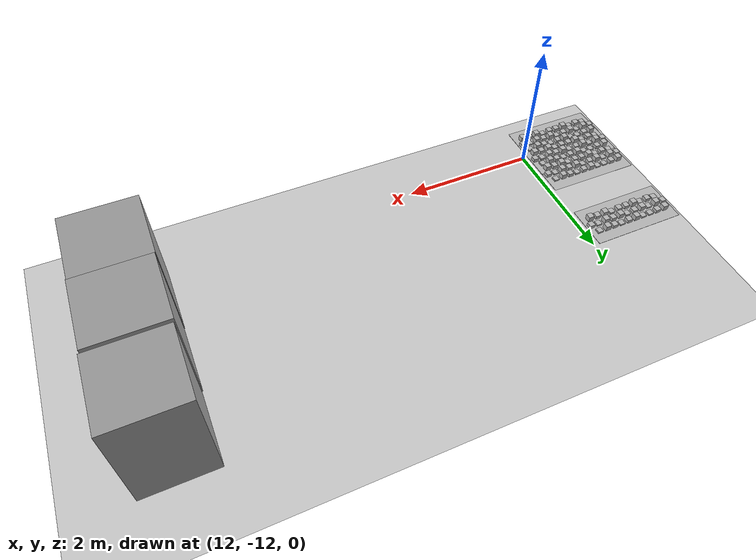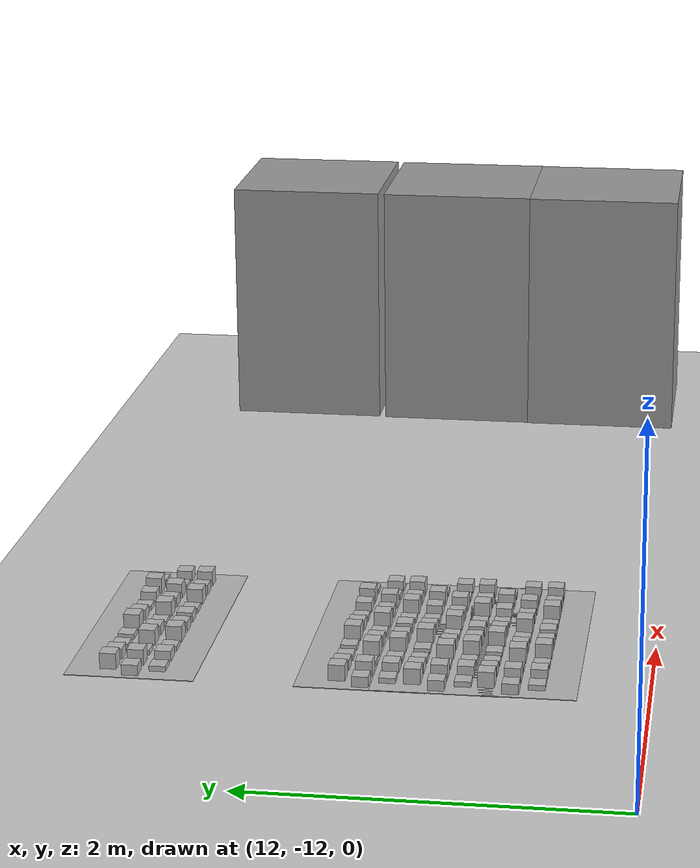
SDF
<sdf version="1.6">
 <world name="default">
  <model name="ground_plane">
   <static>1</static>
   <link name="link">
    <collision name="collision">
     <geometry><plane><normal>0 0 1</normal><size>100 100</size></plane></geometry>
     <surface><friction><ode><mu>100</mu><mu2>50</mu2></ode></friction></surface>
    </collision>
    <visual name="visual">
     <cast_shadows>0</cast_shadows>
     <geometry><plane><normal>0 0 1</normal><size>100 100</size></plane></geometry>
     <material>
      <script><uri>file://media/materials/scripts/gazebo.material</uri><name>Gazebo/Grey</name></script>
     </material>
    </visual>
   </link>
  </model>
  <model name="frc2016_roughterrain_clone_0_clone_clone_3_clone_1">
   <static>1</static>
   <link name="link">
    <visual name="platform">
     <pose>0 0 0.08269 0 -0 0</pose>
     <geometry><box><size>1.27 0.5969 0.003175</size></box></geometry>
    </visual>
    <collision name="platform">
     <pose>0 0 0.08269 0 -0 0</pose>
     <geometry><box><size>1.27 0.5969 0.003175</size></box></geometry>
    </collision>
    <visual name="row1_block1_sm">
     <pose>0.51435 0.1143 0.09698 0 -0 0</pose>
     <geometry><box><size>0.0762 0.0762 0.0254</size></box></geometry>
    </visual>
    <collision name="row1_block1_sm">
     <pose>0.51435 0.1143 0.09698 0 -0 0</pose>
     <geometry><box><size>0.0762 0.0762 0.0254</size></box></geometry>
    </collision>
    <visual name="row1_block2_lg">
     <pose>0.40005 0.1143 0.12238 0 -0 0</pose>
     <geometry><box><size>0.0762 0.0762 0.0762</size></box></geometry>
    </visual>
    <collision name="row1_block2_lg">
     <pose>0.40005 0.1143 0.12238 0 -0 0</pose>
     <geometry><box><size>0.0762 0.0762 0.0762</size></box></geometry>
    </collision>
    <visual name="row1_block3_md">
     <pose>0.28575 0.1143 0.10968 0 -0 0</pose>
     <geometry><box><size>0.0762 0.0762 0.0508</size></box></geometry>
    </visual>
    <collision name="row1_block3_md">
     <pose>0.28575 0.1143 0.10968 0 -0 0</pose>
     <geometry><box><size>0.0762 0.0762 0.0508</size></box></geometry>
    </collision>
    <visual name="row1_block4_sm">
     <pose>0.17145 0.1143 0.09698 0 -0 0</pose>
     <geometry><box><size>0.0762 0.0762 0.0254</size></box></geometry>
    </visual>
    <collision name="row1_block4_sm">
     <pose>0.17145 0.1143 0.09698 0 -0 0</pose>
     <geometry><box><size>0.0762 0.0762 0.0254</size></box></geometry>
    </collision>
    <visual name="row1_block5_md">
     <pose>0.05715 0.1143 0.10968 0 -0 0</pose>
     <geometry><box><size>0.0762 0.0762 0.0508</size></box></geometry>
    </visual>
    <collision name="row1_block5_md">
     <pose>0.05715 0.1143 0.10968 0 -0 0</pose>
     <geometry><box><size>0.0762 0.0762 0.0508</size></box></geometry>
    </collision>
    <visual name="row1_block6_lg">
     <pose>-0.05715 0.1143 0.12238 0 -0 0</pose>
     <geometry><box><size>0.0762 0.0762 0.0762</size></box></geometry>
    </visual>
    <collision name="row1_block6_lg">
     <pose>-0.05715 0.1143 0.12238 0 -0 0</pose>
     <geometry><box><size>0.0762 0.0762 0.0762</size></box></geometry>
    </collision>
    <visual name="row1_block7_sm">
     <pose>-0.17145 0.1143 0.09698 0 -0 0</pose>
     <geometry><box><size>0.0762 0.0762 0.0254</size></box></geometry>
    </visual>
    <collision name="row1_block7_sm">
     <pose>-0.17145 0.1143 0.09698 0 -0 0</pose>
     <geometry><box><size>0.0762 0.0762 0.0254</size></box></geometry>
    </collision>
    <visual name="row1_block8_sm">
     <pose>-0.28575 0.1143 0.09698 0 -0 0</pose>
     <geometry><box><size>0.0762 0.0762 0.0254</size></box></geometry>
    </visual>
    <collision name="row1_block8_sm">
     <pose>-0.28575 0.1143 0.09698 0 -0 0</pose>
     <geometry><box><size>0.0762 0.0762 0.0254</size></box></geometry>
    </collision>
    <visual name="row1_block9_md">
     <pose>-0.40005 0.1143 0.10968 0 -0 0</pose>
     <geometry><box><size>0.0762 0.0762 0.0508</size></box></geometry>
    </visual>
    <collision name="row1_block9_md">
     <pose>-0.40005 0.1143 0.10968 0 -0 0</pose>
     <geometry><box><size>0.0762 0.0762 0.0508</size></box></geometry>
    </collision>
    <visual name="row1_block10_lg">
     <pose>-0.51435 0.1143 0.12238 0 -0 0</pose>
     <geometry><box><size>0.0762 0.0762 0.0762</size></box></geometry>
    </visual>
    <collision name="row1_block10_lg">
     <pose>-0.51435 0.1143 0.12238 0 -0 0</pose>
     <geometry><box><size>0.0762 0.0762 0.0762</size></box></geometry>
    </collision>
    <visual name="row2_block1_md">
     <pose>0.5715 0 0.10968 0 -0 0</pose>
     <geometry><box><size>0.0762 0.0762 0.0508</size></box></geometry>
    </visual>
    <collision name="row2_block1_md">
     <pose>0.5715 0 0.10968 0 -0 0</pose>
     <geometry><box><size>0.0762 0.0762 0.0508</size></box></geometry>
    </collision>
    <visual name="row2_block2_sm">
     <pose>0.4572 0 0.09698 0 -0 0</pose>
     <geometry><box><size>0.0762 0.0762 0.0254</size></box></geometry>
    </visual>
    <collision name="row2_block2_sm">
     <pose>0.4572 0 0.09698 0 -0 0</pose>
     <geometry><box><size>0.0762 0.0762 0.0254</size></box></geometry>
    </collision>
    <visual name="row2_block3_lg">
     <pose>0.3429 0 0.12238 0 -0 0</pose>
     <geometry><box><size>0.0762 0.0762 0.0762</size></box></geometry>
    </visual>
    <collision name="row2_block3_lg">
     <pose>0.3429 0 0.12238 0 -0 0</pose>
     <geometry><box><size>0.0762 0.0762 0.0762</size></box></geometry>
    </collision>
    <visual name="row2_block4_md">
     <pose>0.2286 0 0.10968 0 -0 0</pose>
     <geometry><box><size>0.0762 0.0762 0.0508</size></box></geometry>
    </visual>
    <collision name="row2_block4_md">
     <pose>0.2286 0 0.10968 0 -0 0</pose>
     <geometry><box><size>0.0762 0.0762 0.0508</size></box></geometry>
    </collision>
    <visual name="row2_block5_lg">
     <pose>0.1143 0 0.12238 0 -0 0</pose>
     <geometry><box><size>0.0762 0.0762 0.0762</size></box></geometry>
    </visual>
    <collision name="row2_block5_lg">
     <pose>0.1143 0 0.12238 0 -0 0</pose>
     <geometry><box><size>0.0762 0.0762 0.0762</size></box></geometry>
    </collision>
    <visual name="row2_block6_sm">
     <pose>0 0 0.09698 0 -0 0</pose>
     <geometry><box><size>0.0762 0.0762 0.0254</size></box></geometry>
    </visual>
    <collision name="row2_block6_sm">
     <pose>0 0 0.09698 0 -0 0</pose>
     <geometry><box><size>0.0762 0.0762 0.0254</size></box></geometry>
    </collision>
    <visual name="row2_block7_md">
     <pose>-0.1143 0 0.10968 0 -0 0</pose>
     <geometry><box><size>0.0762 0.0762 0.0508</size></box></geometry>
    </visual>
    <collision name="row2_block7_md">
     <pose>-0.1143 0 0.10968 0 -0 0</pose>
     <geometry><box><size>0.0762 0.0762 0.0508</size></box></geometry>
    </collision>
    <visual name="row2_block8_lg">
     <pose>-0.2286 0 0.12238 0 -0 0</pose>
     <geometry><box><size>0.0762 0.0762 0.0762</size></box></geometry>
    </visual>
    <collision name="row2_block8_lg">
     <pose>-0.2286 0 0.12238 0 -0 0</pose>
     <geometry><box><size>0.0762 0.0762 0.0762</size></box></geometry>
    </collision>
    <visual name="row2_block9_sm">
     <pose>-0.3429 0 0.09698 0 -0 0</pose>
     <geometry><box><size>0.0762 0.0762 0.0254</size></box></geometry>
    </visual>
    <collision name="row2_block9_sm">
     <pose>-0.3429 0 0.09698 0 -0 0</pose>
     <geometry><box><size>0.0762 0.0762 0.0254</size></box></geometry>
    </collision>
    <visual name="row2_block10_lg">
     <pose>-0.4572 0 0.12238 0 -0 0</pose>
     <geometry><box><size>0.0762 0.0762 0.0762</size></box></geometry>
    </visual>
    <collision name="row2_block10_lg">
     <pose>-0.4572 0 0.12238 0 -0 0</pose>
     <geometry><box><size>0.0762 0.0762 0.0762</size></box></geometry>
    </collision>
    <visual name="row2_block11_md">
     <pose>-0.5715 0 0.10968 0 -0 0</pose>
     <geometry><box><size>0.0762 0.0762 0.0508</size></box></geometry>
    </visual>
    <collision name="row2_block11_md">
     <pose>-0.5715 0 0.10968 0 -0 0</pose>
     <geometry><box><size>0.0762 0.0762 0.0508</size></box></geometry>
    </collision>
    <visual name="row3_block1_lg">
     <pose>0.51435 -0.1143 0.12238 0 -0 0</pose>
     <geometry><box><size>0.0762 0.0762 0.0762</size></box></geometry>
    </visual>
    <collision name="row3_block1_lg">
     <pose>0.51435 -0.1143 0.12238 0 -0 0</pose>
     <geometry><box><size>0.0762 0.0762 0.0762</size></box></geometry>
    </collision>
    <visual name="row3_block2_md">
     <pose>0.40005 -0.1143 0.10968 0 -0 0</pose>
     <geometry><box><size>0.0762 0.0762 0.0508</size></box></geometry>
    </visual>
    <collision name="row3_block2_md">
     <pose>0.40005 -0.1143 0.10968 0 -0 0</pose>
     <geometry><box><size>0.0762 0.0762 0.0508</size></box></geometry>
    </collision>
    <visual name="row3_block3_lg">
     <pose>0.28575 -0.1143 0.12238 0 -0 0</pose>
     <geometry><box><size>0.0762 0.0762 0.0762</size></box></geometry>
    </visual>
    <collision name="row3_block3_lg">
     <pose>0.28575 -0.1143 0.12238 0 -0 0</pose>
     <geometry><box><size>0.0762 0.0762 0.0762</size></box></geometry>
    </collision>
    <visual name="row3_block4_sm">
     <pose>0.17145 -0.1143 0.09698 0 -0 0</pose>
     <geometry><box><size>0.0762 0.0762 0.0254</size></box></geometry>
    </visual>
    <collision name="row3_block4_sm">
     <pose>0.17145 -0.1143 0.09698 0 -0 0</pose>
     <geometry><box><size>0.0762 0.0762 0.0254</size></box></geometry>
    </collision>
    <visual name="row3_block5_md">
     <pose>0.05715 -0.1143 0.10968 0 -0 0</pose>
     <geometry><box><size>0.0762 0.0762 0.0508</size></box></geometry>
    </visual>
    <collision name="row3_block5_md">
     <pose>0.05715 -0.1143 0.10968 0 -0 0</pose>
     <geometry><box><size>0.0762 0.0762 0.0508</size></box></geometry>
    </collision>
    <visual name="row3_block6_md">
     <pose>-0.05715 -0.1143 0.10968 0 -0 0</pose>
     <geometry><box><size>0.0762 0.0762 0.0508</size></box></geometry>
    </visual>
    <collision name="row3_block6_md">
     <pose>-0.05715 -0.1143 0.10968 0 -0 0</pose>
     <geometry><box><size>0.0762 0.0762 0.0508</size></box></geometry>
    </collision>
    <visual name="row3_block7_lg">
     <pose>-0.17145 -0.1143 0.12238 0 -0 0</pose>
     <geometry><box><size>0.0762 0.0762 0.0762</size></box></geometry>
    </visual>
    <collision name="row3_block7_lg">
     <pose>-0.17145 -0.1143 0.12238 0 -0 0</pose>
     <geometry><box><size>0.0762 0.0762 0.0762</size></box></geometry>
    </collision>
    <visual name="row3_block8_sm">
     <pose>-0.28575 -0.1143 0.09698 0 -0 0</pose>
     <geometry><box><size>0.0762 0.0762 0.0254</size></box></geometry>
    </visual>
    <collision name="row3_block8_sm">
     <pose>-0.28575 -0.1143 0.09698 0 -0 0</pose>
     <geometry><box><size>0.0762 0.0762 0.0254</size></box></geometry>
    </collision>
    <visual name="row3_block9_md">
     <pose>-0.40005 -0.1143 0.10968 0 -0 0</pose>
     <geometry><box><size>0.0762 0.0762 0.0508</size></box></geometry>
    </visual>
    <collision name="row3_block9_md">
     <pose>-0.40005 -0.1143 0.10968 0 -0 0</pose>
     <geometry><box><size>0.0762 0.0762 0.0508</size></box></geometry>
    </collision>
    <visual name="row3_block10_sm">
     <pose>-0.51435 -0.1143 0.09698 0 -0 0</pose>
     <geometry><box><size>0.0762 0.0762 0.0254</size></box></geometry>
    </visual>
    <collision name="row3_block10_sm">
     <pose>-0.51435 -0.1143 0.09698 0 -0 0</pose>
     <geometry><box><size>0.0762 0.0762 0.0254</size></box></geometry>
    </collision>
   </link>
   <pose>11.9159 -9.72039 0.826533 0 -0 0</pose>
  </model>
  <model name="frc2016_roughterrain_clone_0_clone_clone_3_clone_1_clone_0_clone">
   <static>1</static>
   <link name="link">
    <visual name="platform">
     <pose>0 0 0.08269 0 -0 0</pose>
     <geometry><box><size>1.27 0.5969 0.003175</size></box></geometry>
    </visual>
    <collision name="platform">
     <pose>0 0 0.08269 0 -0 0</pose>
     <geometry><box><size>1.27 0.5969 0.003175</size></box></geometry>
    </collision>
    <visual name="row1_block1_sm">
     <pose>0.51435 0.1143 0.09698 0 -0 0</pose>
     <geometry><box><size>0.0762 0.0762 0.0254</size></box></geometry>
    </visual>
    <collision name="row1_block1_sm">
     <pose>0.51435 0.1143 0.09698 0 -0 0</pose>
     <geometry><box><size>0.0762 0.0762 0.0254</size></box></geometry>
    </collision>
    <visual name="row1_block2_lg">
     <pose>0.40005 0.1143 0.12238 0 -0 0</pose>
     <geometry><box><size>0.0762 0.0762 0.0762</size></box></geometry>
    </visual>
    <collision name="row1_block2_lg">
     <pose>0.40005 0.1143 0.12238 0 -0 0</pose>
     <geometry><box><size>0.0762 0.0762 0.0762</size></box></geometry>
    </collision>
    <visual name="row1_block3_md">
     <pose>0.28575 0.1143 0.10968 0 -0 0</pose>
     <geometry><box><size>0.0762 0.0762 0.0508</size></box></geometry>
    </visual>
    <collision name="row1_block3_md">
     <pose>0.28575 0.1143 0.10968 0 -0 0</pose>
     <geometry><box><size>0.0762 0.0762 0.0508</size></box></geometry>
    </collision>
    <visual name="row1_block4_sm">
     <pose>0.17145 0.1143 0.09698 0 -0 0</pose>
     <geometry><box><size>0.0762 0.0762 0.0254</size></box></geometry>
    </visual>
    <collision name="row1_block4_sm">
     <pose>0.17145 0.1143 0.09698 0 -0 0</pose>
     <geometry><box><size>0.0762 0.0762 0.0254</size></box></geometry>
    </collision>
    <visual name="row1_block5_md">
     <pose>0.05715 0.1143 0.10968 0 -0 0</pose>
     <geometry><box><size>0.0762 0.0762 0.0508</size></box></geometry>
    </visual>
    <collision name="row1_block5_md">
     <pose>0.05715 0.1143 0.10968 0 -0 0</pose>
     <geometry><box><size>0.0762 0.0762 0.0508</size></box></geometry>
    </collision>
    <visual name="row1_block6_lg">
     <pose>-0.05715 0.1143 0.12238 0 -0 0</pose>
     <geometry><box><size>0.0762 0.0762 0.0762</size></box></geometry>
    </visual>
    <collision name="row1_block6_lg">
     <pose>-0.05715 0.1143 0.12238 0 -0 0</pose>
     <geometry><box><size>0.0762 0.0762 0.0762</size></box></geometry>
    </collision>
    <visual name="row1_block7_sm">
     <pose>-0.17145 0.1143 0.09698 0 -0 0</pose>
     <geometry><box><size>0.0762 0.0762 0.0254</size></box></geometry>
    </visual>
    <collision name="row1_block7_sm">
     <pose>-0.17145 0.1143 0.09698 0 -0 0</pose>
     <geometry><box><size>0.0762 0.0762 0.0254</size></box></geometry>
    </collision>
    <visual name="row1_block8_sm">
     <pose>-0.28575 0.1143 0.09698 0 -0 0</pose>
     <geometry><box><size>0.0762 0.0762 0.0254</size></box></geometry>
    </visual>
    <collision name="row1_block8_sm">
     <pose>-0.28575 0.1143 0.09698 0 -0 0</pose>
     <geometry><box><size>0.0762 0.0762 0.0254</size></box></geometry>
    </collision>
    <visual name="row1_block9_md">
     <pose>-0.40005 0.1143 0.10968 0 -0 0</pose>
     <geometry><box><size>0.0762 0.0762 0.0508</size></box></geometry>
    </visual>
    <collision name="row1_block9_md">
     <pose>-0.40005 0.1143 0.10968 0 -0 0</pose>
     <geometry><box><size>0.0762 0.0762 0.0508</size></box></geometry>
    </collision>
    <visual name="row1_block10_lg">
     <pose>-0.51435 0.1143 0.12238 0 -0 0</pose>
     <geometry><box><size>0.0762 0.0762 0.0762</size></box></geometry>
    </visual>
    <collision name="row1_block10_lg">
     <pose>-0.51435 0.1143 0.12238 0 -0 0</pose>
     <geometry><box><size>0.0762 0.0762 0.0762</size></box></geometry>
    </collision>
    <visual name="row2_block1_md">
     <pose>0.5715 0 0.10968 0 -0 0</pose>
     <geometry><box><size>0.0762 0.0762 0.0508</size></box></geometry>
    </visual>
    <collision name="row2_block1_md">
     <pose>0.5715 0 0.10968 0 -0 0</pose>
     <geometry><box><size>0.0762 0.0762 0.0508</size></box></geometry>
    </collision>
    <visual name="row2_block2_sm">
     <pose>0.4572 0 0.09698 0 -0 0</pose>
     <geometry><box><size>0.0762 0.0762 0.0254</size></box></geometry>
    </visual>
    <collision name="row2_block2_sm">
     <pose>0.4572 0 0.09698 0 -0 0</pose>
     <geometry><box><size>0.0762 0.0762 0.0254</size></box></geometry>
    </collision>
    <visual name="row2_block3_lg">
     <pose>0.3429 0 0.12238 0 -0 0</pose>
     <geometry><box><size>0.0762 0.0762 0.0762</size></box></geometry>
    </visual>
    <collision name="row2_block3_lg">
     <pose>0.3429 0 0.12238 0 -0 0</pose>
     <geometry><box><size>0.0762 0.0762 0.0762</size></box></geometry>
    </collision>
    <visual name="row2_block4_md">
     <pose>0.2286 0 0.10968 0 -0 0</pose>
     <geometry><box><size>0.0762 0.0762 0.0508</size></box></geometry>
    </visual>
    <collision name="row2_block4_md">
     <pose>0.2286 0 0.10968 0 -0 0</pose>
     <geometry><box><size>0.0762 0.0762 0.0508</size></box></geometry>
    </collision>
    <visual name="row2_block5_lg">
     <pose>0.1143 0 0.12238 0 -0 0</pose>
     <geometry><box><size>0.0762 0.0762 0.0762</size></box></geometry>
    </visual>
    <collision name="row2_block5_lg">
     <pose>0.1143 0 0.12238 0 -0 0</pose>
     <geometry><box><size>0.0762 0.0762 0.0762</size></box></geometry>
    </collision>
    <visual name="row2_block6_sm">
     <pose>0 0 0.09698 0 -0 0</pose>
     <geometry><box><size>0.0762 0.0762 0.0254</size></box></geometry>
    </visual>
    <collision name="row2_block6_sm">
     <pose>0 0 0.09698 0 -0 0</pose>
     <geometry><box><size>0.0762 0.0762 0.0254</size></box></geometry>
    </collision>
    <visual name="row2_block7_md">
     <pose>-0.1143 0 0.10968 0 -0 0</pose>
     <geometry><box><size>0.0762 0.0762 0.0508</size></box></geometry>
    </visual>
    <collision name="row2_block7_md">
     <pose>-0.1143 0 0.10968 0 -0 0</pose>
     <geometry><box><size>0.0762 0.0762 0.0508</size></box></geometry>
    </collision>
    <visual name="row2_block8_lg">
     <pose>-0.2286 0 0.12238 0 -0 0</pose>
     <geometry><box><size>0.0762 0.0762 0.0762</size></box></geometry>
    </visual>
    <collision name="row2_block8_lg">
     <pose>-0.2286 0 0.12238 0 -0 0</pose>
     <geometry><box><size>0.0762 0.0762 0.0762</size></box></geometry>
    </collision>
    <visual name="row2_block9_sm">
     <pose>-0.3429 0 0.09698 0 -0 0</pose>
     <geometry><box><size>0.0762 0.0762 0.0254</size></box></geometry>
    </visual>
    <collision name="row2_block9_sm">
     <pose>-0.3429 0 0.09698 0 -0 0</pose>
     <geometry><box><size>0.0762 0.0762 0.0254</size></box></geometry>
    </collision>
    <visual name="row2_block10_lg">
     <pose>-0.4572 0 0.12238 0 -0 0</pose>
     <geometry><box><size>0.0762 0.0762 0.0762</size></box></geometry>
    </visual>
    <collision name="row2_block10_lg">
     <pose>-0.4572 0 0.12238 0 -0 0</pose>
     <geometry><box><size>0.0762 0.0762 0.0762</size></box></geometry>
    </collision>
    <visual name="row2_block11_md">
     <pose>-0.5715 0 0.10968 0 -0 0</pose>
     <geometry><box><size>0.0762 0.0762 0.0508</size></box></geometry>
    </visual>
    <collision name="row2_block11_md">
     <pose>-0.5715 0 0.10968 0 -0 0</pose>
     <geometry><box><size>0.0762 0.0762 0.0508</size></box></geometry>
    </collision>
    <visual name="row3_block1_lg">
     <pose>0.51435 -0.1143 0.12238 0 -0 0</pose>
     <geometry><box><size>0.0762 0.0762 0.0762</size></box></geometry>
    </visual>
    <collision name="row3_block1_lg">
     <pose>0.51435 -0.1143 0.12238 0 -0 0</pose>
     <geometry><box><size>0.0762 0.0762 0.0762</size></box></geometry>
    </collision>
    <visual name="row3_block2_md">
     <pose>0.40005 -0.1143 0.10968 0 -0 0</pose>
     <geometry><box><size>0.0762 0.0762 0.0508</size></box></geometry>
    </visual>
    <collision name="row3_block2_md">
     <pose>0.40005 -0.1143 0.10968 0 -0 0</pose>
     <geometry><box><size>0.0762 0.0762 0.0508</size></box></geometry>
    </collision>
    <visual name="row3_block3_lg">
     <pose>0.28575 -0.1143 0.12238 0 -0 0</pose>
     <geometry><box><size>0.0762 0.0762 0.0762</size></box></geometry>
    </visual>
    <collision name="row3_block3_lg">
     <pose>0.28575 -0.1143 0.12238 0 -0 0</pose>
     <geometry><box><size>0.0762 0.0762 0.0762</size></box></geometry>
    </collision>
    <visual name="row3_block4_sm">
     <pose>0.17145 -0.1143 0.09698 0 -0 0</pose>
     <geometry><box><size>0.0762 0.0762 0.0254</size></box></geometry>
    </visual>
    <collision name="row3_block4_sm">
     <pose>0.17145 -0.1143 0.09698 0 -0 0</pose>
     <geometry><box><size>0.0762 0.0762 0.0254</size></box></geometry>
    </collision>
    <visual name="row3_block5_md">
     <pose>0.05715 -0.1143 0.10968 0 -0 0</pose>
     <geometry><box><size>0.0762 0.0762 0.0508</size></box></geometry>
    </visual>
    <collision name="row3_block5_md">
     <pose>0.05715 -0.1143 0.10968 0 -0 0</pose>
     <geometry><box><size>0.0762 0.0762 0.0508</size></box></geometry>
    </collision>
    <visual name="row3_block6_md">
     <pose>-0.05715 -0.1143 0.10968 0 -0 0</pose>
     <geometry><box><size>0.0762 0.0762 0.0508</size></box></geometry>
    </visual>
    <collision name="row3_block6_md">
     <pose>-0.05715 -0.1143 0.10968 0 -0 0</pose>
     <geometry><box><size>0.0762 0.0762 0.0508</size></box></geometry>
    </collision>
    <visual name="row3_block7_lg">
     <pose>-0.17145 -0.1143 0.12238 0 -0 0</pose>
     <geometry><box><size>0.0762 0.0762 0.0762</size></box></geometry>
    </visual>
    <collision name="row3_block7_lg">
     <pose>-0.17145 -0.1143 0.12238 0 -0 0</pose>
     <geometry><box><size>0.0762 0.0762 0.0762</size></box></geometry>
    </collision>
    <visual name="row3_block8_sm">
     <pose>-0.28575 -0.1143 0.09698 0 -0 0</pose>
     <geometry><box><size>0.0762 0.0762 0.0254</size></box></geometry>
    </visual>
    <collision name="row3_block8_sm">
     <pose>-0.28575 -0.1143 0.09698 0 -0 0</pose>
     <geometry><box><size>0.0762 0.0762 0.0254</size></box></geometry>
    </collision>
    <visual name="row3_block9_md">
     <pose>-0.40005 -0.1143 0.10968 0 -0 0</pose>
     <geometry><box><size>0.0762 0.0762 0.0508</size></box></geometry>
    </visual>
    <collision name="row3_block9_md">
     <pose>-0.40005 -0.1143 0.10968 0 -0 0</pose>
     <geometry><box><size>0.0762 0.0762 0.0508</size></box></geometry>
    </collision>
    <visual name="row3_block10_sm">
     <pose>-0.51435 -0.1143 0.09698 0 -0 0</pose>
     <geometry><box><size>0.0762 0.0762 0.0254</size></box></geometry>
    </visual>
    <collision name="row3_block10_sm">
     <pose>-0.51435 -0.1143 0.09698 0 -0 0</pose>
     <geometry><box><size>0.0762 0.0762 0.0254</size></box></geometry>
    </collision>
   </link>
   <pose>11.9156 -10.7733 0.826533 0 -0 0</pose>
  </model>
  <model name="frc2016_roughterrain_clone_0_clone_clone_3_clone_1_clone_0_clone_clone">
   <static>1</static>
   <link name="link">
    <visual name="platform">
     <pose>0 0 0.08269 0 -0 0</pose>
     <geometry><box><size>1.27 0.5969 0.003175</size></box></geometry>
    </visual>
    <collision name="platform">
     <pose>0 0 0.08269 0 -0 0</pose>
     <geometry><box><size>1.27 0.5969 0.003175</size></box></geometry>
    </collision>
    <visual name="row1_block1_sm">
     <pose>0.51435 0.1143 0.09698 0 -0 0</pose>
     <geometry><box><size>0.0762 0.0762 0.0254</size></box></geometry>
    </visual>
    <collision name="row1_block1_sm">
     <pose>0.51435 0.1143 0.09698 0 -0 0</pose>
     <geometry><box><size>0.0762 0.0762 0.0254</size></box></geometry>
    </collision>
    <visual name="row1_block2_lg">
     <pose>0.40005 0.1143 0.12238 0 -0 0</pose>
     <geometry><box><size>0.0762 0.0762 0.0762</size></box></geometry>
    </visual>
    <collision name="row1_block2_lg">
     <pose>0.40005 0.1143 0.12238 0 -0 0</pose>
     <geometry><box><size>0.0762 0.0762 0.0762</size></box></geometry>
    </collision>
    <visual name="row1_block3_md">
     <pose>0.28575 0.1143 0.10968 0 -0 0</pose>
     <geometry><box><size>0.0762 0.0762 0.0508</size></box></geometry>
    </visual>
    <collision name="row1_block3_md">
     <pose>0.28575 0.1143 0.10968 0 -0 0</pose>
     <geometry><box><size>0.0762 0.0762 0.0508</size></box></geometry>
    </collision>
    <visual name="row1_block4_sm">
     <pose>0.17145 0.1143 0.09698 0 -0 0</pose>
     <geometry><box><size>0.0762 0.0762 0.0254</size></box></geometry>
    </visual>
    <collision name="row1_block4_sm">
     <pose>0.17145 0.1143 0.09698 0 -0 0</pose>
     <geometry><box><size>0.0762 0.0762 0.0254</size></box></geometry>
    </collision>
    <visual name="row1_block5_md">
     <pose>0.05715 0.1143 0.10968 0 -0 0</pose>
     <geometry><box><size>0.0762 0.0762 0.0508</size></box></geometry>
    </visual>
    <collision name="row1_block5_md">
     <pose>0.05715 0.1143 0.10968 0 -0 0</pose>
     <geometry><box><size>0.0762 0.0762 0.0508</size></box></geometry>
    </collision>
    <visual name="row1_block6_lg">
     <pose>-0.05715 0.1143 0.12238 0 -0 0</pose>
     <geometry><box><size>0.0762 0.0762 0.0762</size></box></geometry>
    </visual>
    <collision name="row1_block6_lg">
     <pose>-0.05715 0.1143 0.12238 0 -0 0</pose>
     <geometry><box><size>0.0762 0.0762 0.0762</size></box></geometry>
    </collision>
    <visual name="row1_block7_sm">
     <pose>-0.17145 0.1143 0.09698 0 -0 0</pose>
     <geometry><box><size>0.0762 0.0762 0.0254</size></box></geometry>
    </visual>
    <collision name="row1_block7_sm">
     <pose>-0.17145 0.1143 0.09698 0 -0 0</pose>
     <geometry><box><size>0.0762 0.0762 0.0254</size></box></geometry>
    </collision>
    <visual name="row1_block8_sm">
     <pose>-0.28575 0.1143 0.09698 0 -0 0</pose>
     <geometry><box><size>0.0762 0.0762 0.0254</size></box></geometry>
    </visual>
    <collision name="row1_block8_sm">
     <pose>-0.28575 0.1143 0.09698 0 -0 0</pose>
     <geometry><box><size>0.0762 0.0762 0.0254</size></box></geometry>
    </collision>
    <visual name="row1_block9_md">
     <pose>-0.40005 0.1143 0.10968 0 -0 0</pose>
     <geometry><box><size>0.0762 0.0762 0.0508</size></box></geometry>
    </visual>
    <collision name="row1_block9_md">
     <pose>-0.40005 0.1143 0.10968 0 -0 0</pose>
     <geometry><box><size>0.0762 0.0762 0.0508</size></box></geometry>
    </collision>
    <visual name="row1_block10_lg">
     <pose>-0.51435 0.1143 0.12238 0 -0 0</pose>
     <geometry><box><size>0.0762 0.0762 0.0762</size></box></geometry>
    </visual>
    <collision name="row1_block10_lg">
     <pose>-0.51435 0.1143 0.12238 0 -0 0</pose>
     <geometry><box><size>0.0762 0.0762 0.0762</size></box></geometry>
    </collision>
    <visual name="row2_block1_md">
     <pose>0.5715 0 0.10968 0 -0 0</pose>
     <geometry><box><size>0.0762 0.0762 0.0508</size></box></geometry>
    </visual>
    <collision name="row2_block1_md">
     <pose>0.5715 0 0.10968 0 -0 0</pose>
     <geometry><box><size>0.0762 0.0762 0.0508</size></box></geometry>
    </collision>
    <visual name="row2_block2_sm">
     <pose>0.4572 0 0.09698 0 -0 0</pose>
     <geometry><box><size>0.0762 0.0762 0.0254</size></box></geometry>
    </visual>
    <collision name="row2_block2_sm">
     <pose>0.4572 0 0.09698 0 -0 0</pose>
     <geometry><box><size>0.0762 0.0762 0.0254</size></box></geometry>
    </collision>
    <visual name="row2_block3_lg">
     <pose>0.3429 0 0.12238 0 -0 0</pose>
     <geometry><box><size>0.0762 0.0762 0.0762</size></box></geometry>
    </visual>
    <collision name="row2_block3_lg">
     <pose>0.3429 0 0.12238 0 -0 0</pose>
     <geometry><box><size>0.0762 0.0762 0.0762</size></box></geometry>
    </collision>
    <visual name="row2_block4_md">
     <pose>0.2286 0 0.10968 0 -0 0</pose>
     <geometry><box><size>0.0762 0.0762 0.0508</size></box></geometry>
    </visual>
    <collision name="row2_block4_md">
     <pose>0.2286 0 0.10968 0 -0 0</pose>
     <geometry><box><size>0.0762 0.0762 0.0508</size></box></geometry>
    </collision>
    <visual name="row2_block5_lg">
     <pose>0.1143 0 0.12238 0 -0 0</pose>
     <geometry><box><size>0.0762 0.0762 0.0762</size></box></geometry>
    </visual>
    <collision name="row2_block5_lg">
     <pose>0.1143 0 0.12238 0 -0 0</pose>
     <geometry><box><size>0.0762 0.0762 0.0762</size></box></geometry>
    </collision>
    <visual name="row2_block6_sm">
     <pose>0 0 0.09698 0 -0 0</pose>
     <geometry><box><size>0.0762 0.0762 0.0254</size></box></geometry>
    </visual>
    <collision name="row2_block6_sm">
     <pose>0 0 0.09698 0 -0 0</pose>
     <geometry><box><size>0.0762 0.0762 0.0254</size></box></geometry>
    </collision>
    <visual name="row2_block7_md">
     <pose>-0.1143 0 0.10968 0 -0 0</pose>
     <geometry><box><size>0.0762 0.0762 0.0508</size></box></geometry>
    </visual>
    <collision name="row2_block7_md">
     <pose>-0.1143 0 0.10968 0 -0 0</pose>
     <geometry><box><size>0.0762 0.0762 0.0508</size></box></geometry>
    </collision>
    <visual name="row2_block8_lg">
     <pose>-0.2286 0 0.12238 0 -0 0</pose>
     <geometry><box><size>0.0762 0.0762 0.0762</size></box></geometry>
    </visual>
    <collision name="row2_block8_lg">
     <pose>-0.2286 0 0.12238 0 -0 0</pose>
     <geometry><box><size>0.0762 0.0762 0.0762</size></box></geometry>
    </collision>
    <visual name="row2_block9_sm">
     <pose>-0.3429 0 0.09698 0 -0 0</pose>
     <geometry><box><size>0.0762 0.0762 0.0254</size></box></geometry>
    </visual>
    <collision name="row2_block9_sm">
     <pose>-0.3429 0 0.09698 0 -0 0</pose>
     <geometry><box><size>0.0762 0.0762 0.0254</size></box></geometry>
    </collision>
    <visual name="row2_block10_lg">
     <pose>-0.4572 0 0.12238 0 -0 0</pose>
     <geometry><box><size>0.0762 0.0762 0.0762</size></box></geometry>
    </visual>
    <collision name="row2_block10_lg">
     <pose>-0.4572 0 0.12238 0 -0 0</pose>
     <geometry><box><size>0.0762 0.0762 0.0762</size></box></geometry>
    </collision>
    <visual name="row2_block11_md">
     <pose>-0.5715 0 0.10968 0 -0 0</pose>
     <geometry><box><size>0.0762 0.0762 0.0508</size></box></geometry>
    </visual>
    <collision name="row2_block11_md">
     <pose>-0.5715 0 0.10968 0 -0 0</pose>
     <geometry><box><size>0.0762 0.0762 0.0508</size></box></geometry>
    </collision>
    <visual name="row3_block1_lg">
     <pose>0.51435 -0.1143 0.12238 0 -0 0</pose>
     <geometry><box><size>0.0762 0.0762 0.0762</size></box></geometry>
    </visual>
    <collision name="row3_block1_lg">
     <pose>0.51435 -0.1143 0.12238 0 -0 0</pose>
     <geometry><box><size>0.0762 0.0762 0.0762</size></box></geometry>
    </collision>
    <visual name="row3_block2_md">
     <pose>0.40005 -0.1143 0.10968 0 -0 0</pose>
     <geometry><box><size>0.0762 0.0762 0.0508</size></box></geometry>
    </visual>
    <collision name="row3_block2_md">
     <pose>0.40005 -0.1143 0.10968 0 -0 0</pose>
     <geometry><box><size>0.0762 0.0762 0.0508</size></box></geometry>
    </collision>
    <visual name="row3_block3_lg">
     <pose>0.28575 -0.1143 0.12238 0 -0 0</pose>
     <geometry><box><size>0.0762 0.0762 0.0762</size></box></geometry>
    </visual>
    <collision name="row3_block3_lg">
     <pose>0.28575 -0.1143 0.12238 0 -0 0</pose>
     <geometry><box><size>0.0762 0.0762 0.0762</size></box></geometry>
    </collision>
    <visual name="row3_block4_sm">
     <pose>0.17145 -0.1143 0.09698 0 -0 0</pose>
     <geometry><box><size>0.0762 0.0762 0.0254</size></box></geometry>
    </visual>
    <collision name="row3_block4_sm">
     <pose>0.17145 -0.1143 0.09698 0 -0 0</pose>
     <geometry><box><size>0.0762 0.0762 0.0254</size></box></geometry>
    </collision>
    <visual name="row3_block5_md">
     <pose>0.05715 -0.1143 0.10968 0 -0 0</pose>
     <geometry><box><size>0.0762 0.0762 0.0508</size></box></geometry>
    </visual>
    <collision name="row3_block5_md">
     <pose>0.05715 -0.1143 0.10968 0 -0 0</pose>
     <geometry><box><size>0.0762 0.0762 0.0508</size></box></geometry>
    </collision>
    <visual name="row3_block6_md">
     <pose>-0.05715 -0.1143 0.10968 0 -0 0</pose>
     <geometry><box><size>0.0762 0.0762 0.0508</size></box></geometry>
    </visual>
    <collision name="row3_block6_md">
     <pose>-0.05715 -0.1143 0.10968 0 -0 0</pose>
     <geometry><box><size>0.0762 0.0762 0.0508</size></box></geometry>
    </collision>
    <visual name="row3_block7_lg">
     <pose>-0.17145 -0.1143 0.12238 0 -0 0</pose>
     <geometry><box><size>0.0762 0.0762 0.0762</size></box></geometry>
    </visual>
    <collision name="row3_block7_lg">
     <pose>-0.17145 -0.1143 0.12238 0 -0 0</pose>
     <geometry><box><size>0.0762 0.0762 0.0762</size></box></geometry>
    </collision>
    <visual name="row3_block8_sm">
     <pose>-0.28575 -0.1143 0.09698 0 -0 0</pose>
     <geometry><box><size>0.0762 0.0762 0.0254</size></box></geometry>
    </visual>
    <collision name="row3_block8_sm">
     <pose>-0.28575 -0.1143 0.09698 0 -0 0</pose>
     <geometry><box><size>0.0762 0.0762 0.0254</size></box></geometry>
    </collision>
    <visual name="row3_block9_md">
     <pose>-0.40005 -0.1143 0.10968 0 -0 0</pose>
     <geometry><box><size>0.0762 0.0762 0.0508</size></box></geometry>
    </visual>
    <collision name="row3_block9_md">
     <pose>-0.40005 -0.1143 0.10968 0 -0 0</pose>
     <geometry><box><size>0.0762 0.0762 0.0508</size></box></geometry>
    </collision>
    <visual name="row3_block10_sm">
     <pose>-0.51435 -0.1143 0.09698 0 -0 0</pose>
     <geometry><box><size>0.0762 0.0762 0.0254</size></box></geometry>
    </visual>
    <collision name="row3_block10_sm">
     <pose>-0.51435 -0.1143 0.09698 0 -0 0</pose>
     <geometry><box><size>0.0762 0.0762 0.0254</size></box></geometry>
    </collision>
   </link>
   <pose>11.919 -11.1147 0.826533 0 -0 0</pose>
  </model>
  <model name="frc2016_roughterrain_clone_0_clone_clone_3_clone_1_clone_0_clone_clone_0">
   <static>1</static>
   <link name="link">
    <visual name="platform">
     <pose>0 0 0.08269 0 -0 0</pose>
     <geometry><box><size>1.27 0.5969 0.003175</size></box></geometry>
    </visual>
    <collision name="platform">
     <pose>0 0 0.08269 0 -0 0</pose>
     <geometry><box><size>1.27 0.5969 0.003175</size></box></geometry>
    </collision>
    <visual name="row1_block1_sm">
     <pose>0.51435 0.1143 0.09698 0 -0 0</pose>
     <geometry><box><size>0.0762 0.0762 0.0254</size></box></geometry>
    </visual>
    <collision name="row1_block1_sm">
     <pose>0.51435 0.1143 0.09698 0 -0 0</pose>
     <geometry><box><size>0.0762 0.0762 0.0254</size></box></geometry>
    </collision>
    <visual name="row1_block2_lg">
     <pose>0.40005 0.1143 0.12238 0 -0 0</pose>
     <geometry><box><size>0.0762 0.0762 0.0762</size></box></geometry>
    </visual>
    <collision name="row1_block2_lg">
     <pose>0.40005 0.1143 0.12238 0 -0 0</pose>
     <geometry><box><size>0.0762 0.0762 0.0762</size></box></geometry>
    </collision>
    <visual name="row1_block3_md">
     <pose>0.28575 0.1143 0.10968 0 -0 0</pose>
     <geometry><box><size>0.0762 0.0762 0.0508</size></box></geometry>
    </visual>
    <collision name="row1_block3_md">
     <pose>0.28575 0.1143 0.10968 0 -0 0</pose>
     <geometry><box><size>0.0762 0.0762 0.0508</size></box></geometry>
    </collision>
    <visual name="row1_block4_sm">
     <pose>0.17145 0.1143 0.09698 0 -0 0</pose>
     <geometry><box><size>0.0762 0.0762 0.0254</size></box></geometry>
    </visual>
    <collision name="row1_block4_sm">
     <pose>0.17145 0.1143 0.09698 0 -0 0</pose>
     <geometry><box><size>0.0762 0.0762 0.0254</size></box></geometry>
    </collision>
    <visual name="row1_block5_md">
     <pose>0.05715 0.1143 0.10968 0 -0 0</pose>
     <geometry><box><size>0.0762 0.0762 0.0508</size></box></geometry>
    </visual>
    <collision name="row1_block5_md">
     <pose>0.05715 0.1143 0.10968 0 -0 0</pose>
     <geometry><box><size>0.0762 0.0762 0.0508</size></box></geometry>
    </collision>
    <visual name="row1_block6_lg">
     <pose>-0.05715 0.1143 0.12238 0 -0 0</pose>
     <geometry><box><size>0.0762 0.0762 0.0762</size></box></geometry>
    </visual>
    <collision name="row1_block6_lg">
     <pose>-0.05715 0.1143 0.12238 0 -0 0</pose>
     <geometry><box><size>0.0762 0.0762 0.0762</size></box></geometry>
    </collision>
    <visual name="row1_block7_sm">
     <pose>-0.17145 0.1143 0.09698 0 -0 0</pose>
     <geometry><box><size>0.0762 0.0762 0.0254</size></box></geometry>
    </visual>
    <collision name="row1_block7_sm">
     <pose>-0.17145 0.1143 0.09698 0 -0 0</pose>
     <geometry><box><size>0.0762 0.0762 0.0254</size></box></geometry>
    </collision>
    <visual name="row1_block8_sm">
     <pose>-0.28575 0.1143 0.09698 0 -0 0</pose>
     <geometry><box><size>0.0762 0.0762 0.0254</size></box></geometry>
    </visual>
    <collision name="row1_block8_sm">
     <pose>-0.28575 0.1143 0.09698 0 -0 0</pose>
     <geometry><box><size>0.0762 0.0762 0.0254</size></box></geometry>
    </collision>
    <visual name="row1_block9_md">
     <pose>-0.40005 0.1143 0.10968 0 -0 0</pose>
     <geometry><box><size>0.0762 0.0762 0.0508</size></box></geometry>
    </visual>
    <collision name="row1_block9_md">
     <pose>-0.40005 0.1143 0.10968 0 -0 0</pose>
     <geometry><box><size>0.0762 0.0762 0.0508</size></box></geometry>
    </collision>
    <visual name="row1_block10_lg">
     <pose>-0.51435 0.1143 0.12238 0 -0 0</pose>
     <geometry><box><size>0.0762 0.0762 0.0762</size></box></geometry>
    </visual>
    <collision name="row1_block10_lg">
     <pose>-0.51435 0.1143 0.12238 0 -0 0</pose>
     <geometry><box><size>0.0762 0.0762 0.0762</size></box></geometry>
    </collision>
    <visual name="row2_block1_md">
     <pose>0.5715 0 0.10968 0 -0 0</pose>
     <geometry><box><size>0.0762 0.0762 0.0508</size></box></geometry>
    </visual>
    <collision name="row2_block1_md">
     <pose>0.5715 0 0.10968 0 -0 0</pose>
     <geometry><box><size>0.0762 0.0762 0.0508</size></box></geometry>
    </collision>
    <visual name="row2_block2_sm">
     <pose>0.4572 0 0.09698 0 -0 0</pose>
     <geometry><box><size>0.0762 0.0762 0.0254</size></box></geometry>
    </visual>
    <collision name="row2_block2_sm">
     <pose>0.4572 0 0.09698 0 -0 0</pose>
     <geometry><box><size>0.0762 0.0762 0.0254</size></box></geometry>
    </collision>
    <visual name="row2_block3_lg">
     <pose>0.3429 0 0.12238 0 -0 0</pose>
     <geometry><box><size>0.0762 0.0762 0.0762</size></box></geometry>
    </visual>
    <collision name="row2_block3_lg">
     <pose>0.3429 0 0.12238 0 -0 0</pose>
     <geometry><box><size>0.0762 0.0762 0.0762</size></box></geometry>
    </collision>
    <visual name="row2_block4_md">
     <pose>0.2286 0 0.10968 0 -0 0</pose>
     <geometry><box><size>0.0762 0.0762 0.0508</size></box></geometry>
    </visual>
    <collision name="row2_block4_md">
     <pose>0.2286 0 0.10968 0 -0 0</pose>
     <geometry><box><size>0.0762 0.0762 0.0508</size></box></geometry>
    </collision>
    <visual name="row2_block5_lg">
     <pose>0.1143 0 0.12238 0 -0 0</pose>
     <geometry><box><size>0.0762 0.0762 0.0762</size></box></geometry>
    </visual>
    <collision name="row2_block5_lg">
     <pose>0.1143 0 0.12238 0 -0 0</pose>
     <geometry><box><size>0.0762 0.0762 0.0762</size></box></geometry>
    </collision>
    <visual name="row2_block6_sm">
     <pose>0 0 0.09698 0 -0 0</pose>
     <geometry><box><size>0.0762 0.0762 0.0254</size></box></geometry>
    </visual>
    <collision name="row2_block6_sm">
     <pose>0 0 0.09698 0 -0 0</pose>
     <geometry><box><size>0.0762 0.0762 0.0254</size></box></geometry>
    </collision>
    <visual name="row2_block7_md">
     <pose>-0.1143 0 0.10968 0 -0 0</pose>
     <geometry><box><size>0.0762 0.0762 0.0508</size></box></geometry>
    </visual>
    <collision name="row2_block7_md">
     <pose>-0.1143 0 0.10968 0 -0 0</pose>
     <geometry><box><size>0.0762 0.0762 0.0508</size></box></geometry>
    </collision>
    <visual name="row2_block8_lg">
     <pose>-0.2286 0 0.12238 0 -0 0</pose>
     <geometry><box><size>0.0762 0.0762 0.0762</size></box></geometry>
    </visual>
    <collision name="row2_block8_lg">
     <pose>-0.2286 0 0.12238 0 -0 0</pose>
     <geometry><box><size>0.0762 0.0762 0.0762</size></box></geometry>
    </collision>
    <visual name="row2_block9_sm">
     <pose>-0.3429 0 0.09698 0 -0 0</pose>
     <geometry><box><size>0.0762 0.0762 0.0254</size></box></geometry>
    </visual>
    <collision name="row2_block9_sm">
     <pose>-0.3429 0 0.09698 0 -0 0</pose>
     <geometry><box><size>0.0762 0.0762 0.0254</size></box></geometry>
    </collision>
    <visual name="row2_block10_lg">
     <pose>-0.4572 0 0.12238 0 -0 0</pose>
     <geometry><box><size>0.0762 0.0762 0.0762</size></box></geometry>
    </visual>
    <collision name="row2_block10_lg">
     <pose>-0.4572 0 0.12238 0 -0 0</pose>
     <geometry><box><size>0.0762 0.0762 0.0762</size></box></geometry>
    </collision>
    <visual name="row2_block11_md">
     <pose>-0.5715 0 0.10968 0 -0 0</pose>
     <geometry><box><size>0.0762 0.0762 0.0508</size></box></geometry>
    </visual>
    <collision name="row2_block11_md">
     <pose>-0.5715 0 0.10968 0 -0 0</pose>
     <geometry><box><size>0.0762 0.0762 0.0508</size></box></geometry>
    </collision>
    <visual name="row3_block1_lg">
     <pose>0.51435 -0.1143 0.12238 0 -0 0</pose>
     <geometry><box><size>0.0762 0.0762 0.0762</size></box></geometry>
    </visual>
    <collision name="row3_block1_lg">
     <pose>0.51435 -0.1143 0.12238 0 -0 0</pose>
     <geometry><box><size>0.0762 0.0762 0.0762</size></box></geometry>
    </collision>
    <visual name="row3_block2_md">
     <pose>0.40005 -0.1143 0.10968 0 -0 0</pose>
     <geometry><box><size>0.0762 0.0762 0.0508</size></box></geometry>
    </visual>
    <collision name="row3_block2_md">
     <pose>0.40005 -0.1143 0.10968 0 -0 0</pose>
     <geometry><box><size>0.0762 0.0762 0.0508</size></box></geometry>
    </collision>
    <visual name="row3_block3_lg">
     <pose>0.28575 -0.1143 0.12238 0 -0 0</pose>
     <geometry><box><size>0.0762 0.0762 0.0762</size></box></geometry>
    </visual>
    <collision name="row3_block3_lg">
     <pose>0.28575 -0.1143 0.12238 0 -0 0</pose>
     <geometry><box><size>0.0762 0.0762 0.0762</size></box></geometry>
    </collision>
    <visual name="row3_block4_sm">
     <pose>0.17145 -0.1143 0.09698 0 -0 0</pose>
     <geometry><box><size>0.0762 0.0762 0.0254</size></box></geometry>
    </visual>
    <collision name="row3_block4_sm">
     <pose>0.17145 -0.1143 0.09698 0 -0 0</pose>
     <geometry><box><size>0.0762 0.0762 0.0254</size></box></geometry>
    </collision>
    <visual name="row3_block5_md">
     <pose>0.05715 -0.1143 0.10968 0 -0 0</pose>
     <geometry><box><size>0.0762 0.0762 0.0508</size></box></geometry>
    </visual>
    <collision name="row3_block5_md">
     <pose>0.05715 -0.1143 0.10968 0 -0 0</pose>
     <geometry><box><size>0.0762 0.0762 0.0508</size></box></geometry>
    </collision>
    <visual name="row3_block6_md">
     <pose>-0.05715 -0.1143 0.10968 0 -0 0</pose>
     <geometry><box><size>0.0762 0.0762 0.0508</size></box></geometry>
    </visual>
    <collision name="row3_block6_md">
     <pose>-0.05715 -0.1143 0.10968 0 -0 0</pose>
     <geometry><box><size>0.0762 0.0762 0.0508</size></box></geometry>
    </collision>
    <visual name="row3_block7_lg">
     <pose>-0.17145 -0.1143 0.12238 0 -0 0</pose>
     <geometry><box><size>0.0762 0.0762 0.0762</size></box></geometry>
    </visual>
    <collision name="row3_block7_lg">
     <pose>-0.17145 -0.1143 0.12238 0 -0 0</pose>
     <geometry><box><size>0.0762 0.0762 0.0762</size></box></geometry>
    </collision>
    <visual name="row3_block8_sm">
     <pose>-0.28575 -0.1143 0.09698 0 -0 0</pose>
     <geometry><box><size>0.0762 0.0762 0.0254</size></box></geometry>
    </visual>
    <collision name="row3_block8_sm">
     <pose>-0.28575 -0.1143 0.09698 0 -0 0</pose>
     <geometry><box><size>0.0762 0.0762 0.0254</size></box></geometry>
    </collision>
    <visual name="row3_block9_md">
     <pose>-0.40005 -0.1143 0.10968 0 -0 0</pose>
     <geometry><box><size>0.0762 0.0762 0.0508</size></box></geometry>
    </visual>
    <collision name="row3_block9_md">
     <pose>-0.40005 -0.1143 0.10968 0 -0 0</pose>
     <geometry><box><size>0.0762 0.0762 0.0508</size></box></geometry>
    </collision>
    <visual name="row3_block10_sm">
     <pose>-0.51435 -0.1143 0.09698 0 -0 0</pose>
     <geometry><box><size>0.0762 0.0762 0.0254</size></box></geometry>
    </visual>
    <collision name="row3_block10_sm">
     <pose>-0.51435 -0.1143 0.09698 0 -0 0</pose>
     <geometry><box><size>0.0762 0.0762 0.0254</size></box></geometry>
    </collision>
   </link>
   <pose>11.9223 -11.4477 0.826533 0 -0 0</pose>
  </model>
  <model name="unit_box_clone_10_clone_13_clone_0">
   <pose>18.327 -9.39022 0.799368 -5e-06 1e-06 2e-06</pose>
   <link name="link">
    <inertial>
     <mass>1</mass>
     <inertia>
      <ixx>0.166667</ixx>
      <ixy>0</ixy>
      <ixz>0</ixz>
      <iyy>0.166667</iyy>
      <iyz>0</iyz>
      <izz>0.166667</izz>
     </inertia>
    </inertial>
    <collision name="collision"><geometry><box><size>1 1 1.59874</size></box></geometry></collision>
    <visual name="visual">
     <geometry><box><size>1 1 1.59874</size></box></geometry>
     <material>
      <script><name>Gazebo/Grey</name><uri>file://media/materials/scripts/gazebo.material</uri></script>
     </material>
    </visual>
   </link>
  </model>
  <model name="unit_box_clone_10_clone_13_clone_0_clone">
   <pose>18.3155 -10.4341 0.799371 -0 2e-06 -2.1e-05</pose>
   <link name="link">
    <inertial>
     <mass>1</mass>
     <inertia>
      <ixx>0.166667</ixx>
      <ixy>0</ixy>
      <ixz>0</ixz>
      <iyy>0.166667</iyy>
      <iyz>0</iyz>
      <izz>0.166667</izz>
     </inertia>
    </inertial>
    <collision name="collision"><geometry><box><size>1 1 1.59874</size></box></geometry></collision>
    <visual name="visual">
     <geometry><box><size>1 1 1.59874</size></box></geometry>
     <material>
      <script><name>Gazebo/Grey</name><uri>file://media/materials/scripts/gazebo.material</uri></script>
     </material>
    </visual>
   </link>
  </model>
  <model name="unit_box_clone_10_clone_13_clone_0_clone_0">
   <pose>18.3079 -11.4341 0.799367 6e-06 -0 -2.3e-05</pose>
   <link name="link">
    <inertial>
     <mass>1</mass>
     <inertia>
      <ixx>0.166667</ixx>
      <ixy>0</ixy>
      <ixz>0</ixz>
      <iyy>0.166667</iyy>
      <iyz>0</iyz>
      <izz>0.166667</izz>
     </inertia>
    </inertial>
    <collision name="collision"><geometry><box><size>1 1 1.59874</size></box></geometry></collision>
    <visual name="visual">
     <geometry><box><size>1 1 1.59874</size></box></geometry>
     <material>
      <script><name>Gazebo/Grey</name><uri>file://media/materials/scripts/gazebo.material</uri></script>
     </material>
    </visual>
   </link>
  </model>
 </world>
</sdf>
